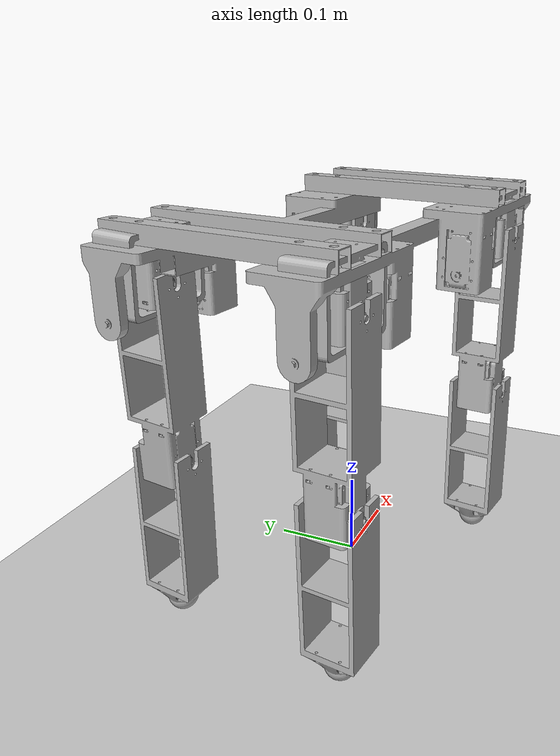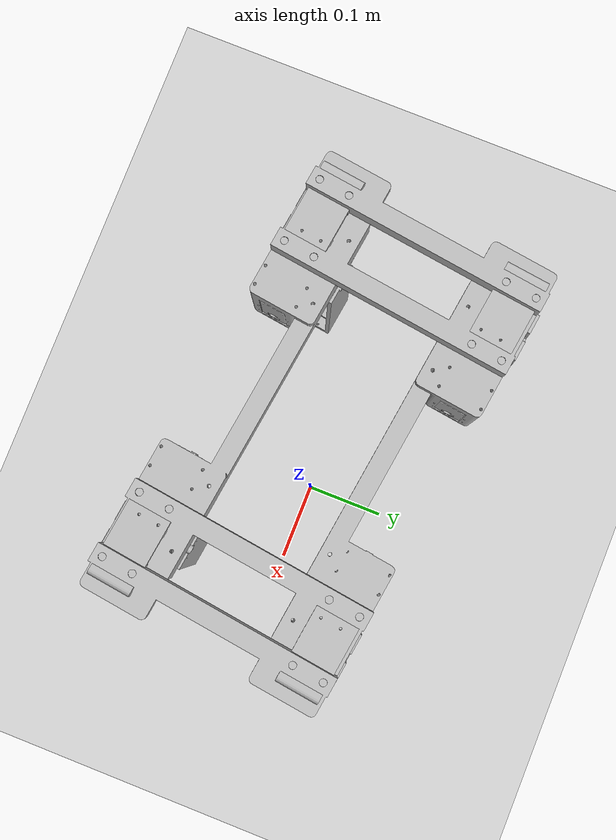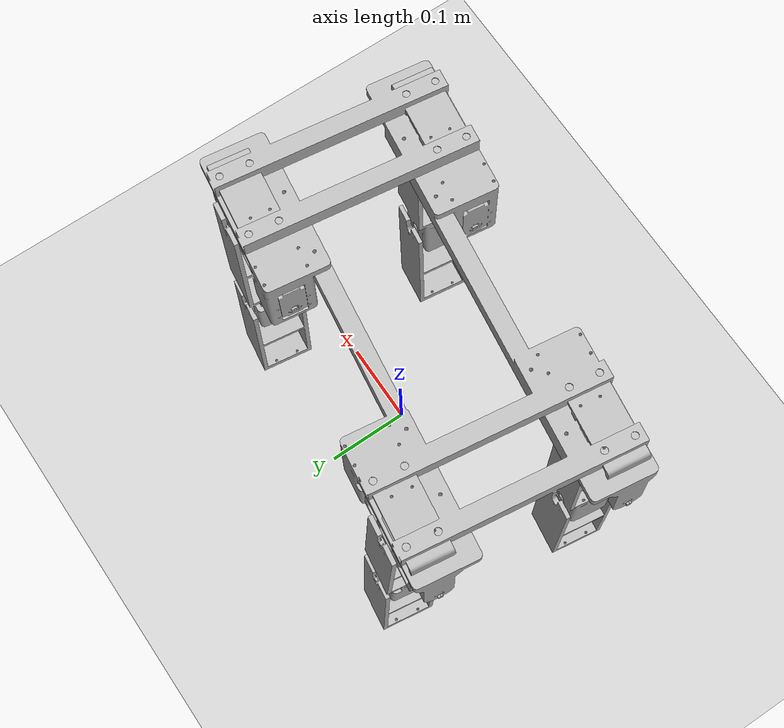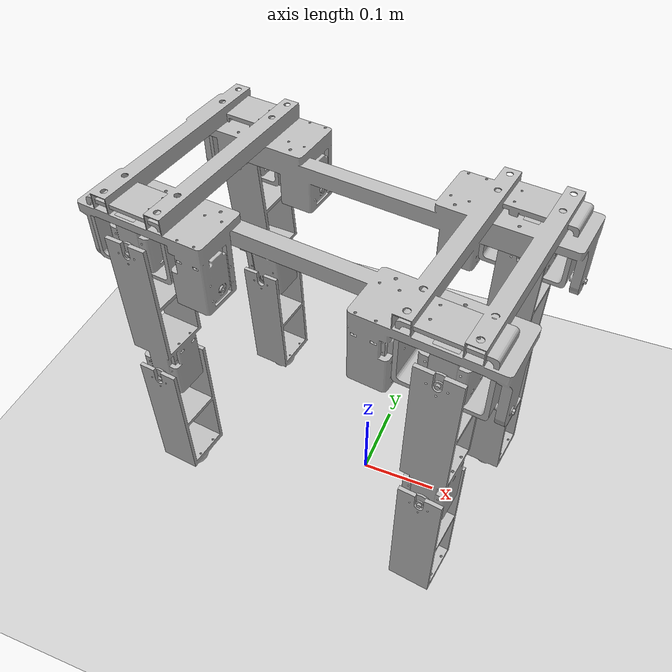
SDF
<sdf version="1.6">
 <world name="default">
  <model name="ground_plane">
   <static>1</static>
   <link name="link">
    <collision name="collision">
     <geometry><plane><normal>0 0 1</normal><size>100 100</size></plane></geometry>
     <surface><friction><ode><mu>0.3</mu><mu2>0.3</mu2></ode></friction></surface>
    </collision>
    <visual name="visual">
     <cast_shadows>0</cast_shadows>
     <geometry><plane><normal>0 0 1</normal><size>100 100</size></plane></geometry>
     <material>
      <script><uri>file://media/materials/scripts/gazebo.material</uri><name>Gazebo/Grey</name></script>
     </material>
    </visual>
   </link>
  </model>
  <light name="sun" type="directional">
   <pose>0 0 10 0 -0 0</pose>
   <diffuse>0.8 0.8 0.8 1</diffuse>
   <specular>0.1 0.1 0.1 1</specular>
   <attenuation>
    <range>1000</range>
    <constant>0.9</constant>
    <linear>0.01</linear>
    <quadratic>0.001</quadratic>
   </attenuation>
   <direction>-0.5 0.5 -1</direction>
  </light>
  <gravity>0 0 -9.8</gravity>
  <magnetic_field>6e-06 2.3e-05 -4.2e-05</magnetic_field>
  <atmosphere type="adiabatic"/>
  <physics name="default_physics" default="0" type="ode">
   <max_step_size>0.001</max_step_size>
   <real_time_factor>1</real_time_factor>
   <real_time_update_rate>1000</real_time_update_rate>
  </physics>
  <scene><ambient>0.4 0.4 0.4 1</ambient><background>0.7 0.7 0.7 1</background><shadows>1</shadows></scene>
  <spherical_coordinates>
   <surface_model>EARTH_WGS84</surface_model>
   <latitude_deg>0</latitude_deg>
   <longitude_deg>0</longitude_deg>
   <elevation>0</elevation>
   <heading_deg>0</heading_deg>
  </spherical_coordinates>
  <audio><device>default</device></audio>
  <model name="Animal">
   <link name="base_link">
    <inertial>
     <pose>-0 -3e-05 0.034153 0 -0 0</pose>
     <mass>1.7307</mass>
     <inertia>
      <ixx>0.018437</ixx>
      <ixy>5.6694e-06</ixy>
      <ixz>8.9977e-11</ixz>
      <iyy>0.051776</iyy>
      <iyz>-9.5537e-07</iyz>
      <izz>0.067028</izz>
     </inertia>
    </inertial>
    <collision name="base_link_collision">
     <geometry>
      <mesh><scale>1 1 1</scale><uri>/home/lab931/ros_ws/src/Animal/meshes/base_link.STL</uri></mesh>
     </geometry>
    </collision>
    <visual name="base_link_visual">
     <geometry>
      <mesh><scale>1 1 1</scale><uri>/home/lab931/ros_ws/src/Animal/meshes/base_link.STL</uri></mesh>
     </geometry>
    </visual>
   </link>
   <link name="Link2">
    <pose>0.1372 0.1033 0 0 -0 0</pose>
    <inertial>
     <pose>0.045397 -0.00031 -0.001073 0 -0 0</pose>
     <mass>0.252</mass>
     <inertia>
      <ixx>0.00017013</ixx>
      <ixy>-1.2055e-08</ixy>
      <ixz>-7.4449e-08</ixz>
      <iyy>0.00027025</iyy>
      <iyz>3.7432e-06</iyz>
      <izz>0.00017837</izz>
     </inertia>
    </inertial>
    <collision name="Link2_collision">
     <geometry>
      <mesh><scale>1 1 1</scale><uri>/home/lab931/ros_ws/src/Animal/meshes/Link2.STL</uri></mesh>
     </geometry>
    </collision>
    <visual name="Link2_visual">
     <geometry>
      <mesh><scale>1 1 1</scale><uri>/home/lab931/ros_ws/src/Animal/meshes/Link2.STL</uri></mesh>
     </geometry>
    </visual>
   </link>
   <joint name="Shoulder_Joint1" type="revolute">
    <child>Link2</child>
    <parent>base_link</parent>
    <axis>
     <xyz>1 0 0</xyz>
     <limit><lower>-3.14</lower><upper>3.14</upper><effort>8.4</effort><velocity>2</velocity></limit>
     <dynamics>
      <damping>0.1</damping>
      <friction>0.1</friction>
      <spring_reference>0</spring_reference>
      <spring_stiffness>0</spring_stiffness>
     </dynamics>
     <use_parent_model_frame>1</use_parent_model_frame>
    </axis>
   </joint>
   <link name="Link11">
    <pose>0.1827 0.133818 -0.014301 0 -0 0</pose>
    <inertial>
     <pose>-0.002197 -0.030177 -0.13842 0 -0 0</pose>
     <mass>0.27</mass>
     <inertia>
      <ixx>0.0011341</ixx>
      <ixy>1.4679e-07</ixy>
      <ixz>-1.5041e-05</ixz>
      <iyy>0.0010864</iyy>
      <iyz>1.024e-05</iyz>
      <izz>0.00015917</izz>
     </inertia>
    </inertial>
    <collision name="Link11_collision">
     <geometry>
      <mesh><scale>1 1 1</scale><uri>/home/lab931/ros_ws/src/Animal/meshes/Link11.STL</uri></mesh>
     </geometry>
    </collision>
    <visual name="Link11_visual">
     <geometry>
      <mesh><scale>1 1 1</scale><uri>/home/lab931/ros_ws/src/Animal/meshes/Link11.STL</uri></mesh>
     </geometry>
    </visual>
   </link>
   <joint name="foot_Joint1" type="revolute">
    <child>Link11</child>
    <parent>Link2</parent>
    <axis>
     <xyz>0 0.99997 0.00817</xyz>
     <limit><lower>-3.14</lower><upper>3.14</upper><effort>8.4</effort><velocity>2</velocity></limit>
     <dynamics>
      <damping>0.1</damping>
      <friction>0.1</friction>
      <spring_reference>0</spring_reference>
      <spring_stiffness>0</spring_stiffness>
     </dynamics>
     <use_parent_model_frame>1</use_parent_model_frame>
    </axis>
   </joint>
   <link name="Link12">
    <pose>0.179667 0.135352 -0.214271 0 -0 0</pose>
    <inertial>
     <pose>0.00265 -0.030368 -0.11422 0 -0 0</pose>
     <mass>0.114</mass>
     <inertia>
      <ixx>0.0007119</ixx>
      <ixy>-1.1015e-07</ixy>
      <ixz>1.3497e-05</ixz>
      <iyy>0.00065387</iyy>
      <iyz>4.2665e-06</iyz>
      <izz>0.00013172</izz>
     </inertia>
    </inertial>
    <collision name="Link12_collision">
     <geometry>
      <mesh><scale>1 1 1</scale><uri>/home/lab931/ros_ws/src/Animal/meshes/Link12.STL</uri></mesh>
     </geometry>
    </collision>
    <visual name="Link12_visual">
     <geometry>
      <mesh><scale>1 1 1</scale><uri>/home/lab931/ros_ws/src/Animal/meshes/Link12.STL</uri></mesh>
     </geometry>
    </visual>
   </link>
   <joint name="foot_Joint5" type="revolute">
    <child>Link12</child>
    <parent>Link11</parent>
    <axis>
     <xyz>0 0.99997 0.00817</xyz>
     <limit><lower>-3.14</lower><upper>3.14</upper><effort>8.4</effort><velocity>2</velocity></limit>
     <dynamics>
      <damping>0.1</damping>
      <friction>0.1</friction>
      <spring_reference>0</spring_reference>
      <spring_stiffness>0</spring_stiffness>
     </dynamics>
     <use_parent_model_frame>1</use_parent_model_frame>
    </axis>
   </joint>
   <link name="Link3">
    <pose>-0.1372 0.1039 0 0 -0 0</pose>
    <inertial>
     <pose>-0.045394 3.7e-05 -0.00107 0 -0 0</pose>
     <mass>0.252</mass>
     <inertia>
      <ixx>0.00017021</ixx>
      <ixy>2.192e-08</ixy>
      <ixz>7.6888e-08</ixz>
      <iyy>0.00027006</iyy>
      <iyz>5.5063e-06</iyz>
      <izz>0.00017864</izz>
     </inertia>
    </inertial>
    <collision name="Link3_collision">
     <geometry>
      <mesh><scale>1 1 1</scale><uri>/home/lab931/ros_ws/src/Animal/meshes/Link3.STL</uri></mesh>
     </geometry>
    </collision>
    <visual name="Link3_visual">
     <geometry>
      <mesh><scale>1 1 1</scale><uri>/home/lab931/ros_ws/src/Animal/meshes/Link3.STL</uri></mesh>
     </geometry>
    </visual>
   </link>
   <joint name="Shoulder_Joint2" type="revolute">
    <child>Link3</child>
    <parent>base_link</parent>
    <axis>
     <xyz>-1 0 0</xyz>
     <limit><lower>-3.14</lower><upper>3.14</upper><effort>8.4</effort><velocity>2</velocity></limit>
     <dynamics>
      <damping>0.1</damping>
      <friction>0.1</friction>
      <spring_reference>0</spring_reference>
      <spring_stiffness>0</spring_stiffness>
     </dynamics>
     <use_parent_model_frame>1</use_parent_model_frame>
    </axis>
   </joint>
   <link name="Link9">
    <pose>-0.1827 0.13551 -0.013635 0 -0 0</pose>
    <inertial>
     <pose>0.007542 -0.027276 -0.13884 0 -0 0</pose>
     <mass>0.27</mass>
     <inertia>
      <ixx>0.0011314</ixx>
      <ixy>-1.7252e-06</ixy>
      <ixz>5.3598e-05</ixz>
      <iyy>0.0010856</iyy>
      <iyz>2.9571e-05</iyz>
      <izz>0.00016273</izz>
     </inertia>
    </inertial>
    <collision name="Link9_collision">
     <geometry>
      <mesh><scale>1 1 1</scale><uri>/home/lab931/ros_ws/src/Animal/meshes/Link9.STL</uri></mesh>
     </geometry>
    </collision>
    <visual name="Link9_visual">
     <geometry>
      <mesh><scale>1 1 1</scale><uri>/home/lab931/ros_ws/src/Animal/meshes/Link9.STL</uri></mesh>
     </geometry>
    </visual>
   </link>
   <joint name="foot_Joint2" type="revolute">
    <child>Link9</child>
    <parent>Link3</parent>
    <axis>
     <xyz>0 0.99958 0.029119</xyz>
     <limit><lower>-3.14</lower><upper>3.14</upper><effort>8.4</effort><velocity>2</velocity></limit>
     <dynamics>
      <damping>0.1</damping>
      <friction>0.1</friction>
      <spring_reference>0</spring_reference>
      <spring_stiffness>0</spring_stiffness>
     </dynamics>
     <use_parent_model_frame>1</use_parent_model_frame>
    </axis>
   </joint>
   <link name="Link10">
    <pose>-0.171638 0.141225 -0.213245 0 -0 0</pose>
    <inertial>
     <pose>0.00218 -0.027968 -0.11484 0 -0 0</pose>
     <mass>0.114</mass>
     <inertia>
      <ixx>0.000712</ixx>
      <ixy>-3.2321e-07</ixy>
      <ixz>1.1099e-05</ixz>
      <iyy>0.00065346</iyy>
      <iyz>1.5203e-05</iyz>
      <izz>0.00013202</izz>
     </inertia>
    </inertial>
    <collision name="Link10_collision">
     <geometry>
      <mesh><scale>1 1 1</scale><uri>/home/lab931/ros_ws/src/Animal/meshes/Link10.STL</uri></mesh>
     </geometry>
    </collision>
    <visual name="Link10_visual">
     <geometry>
      <mesh><scale>1 1 1</scale><uri>/home/lab931/ros_ws/src/Animal/meshes/Link10.STL</uri></mesh>
     </geometry>
    </visual>
   </link>
   <joint name="foot_Joint6" type="revolute">
    <child>Link10</child>
    <parent>Link9</parent>
    <axis>
     <xyz>0 0.99958 0.029119</xyz>
     <limit><lower>-3.14</lower><upper>3.14</upper><effort>8.4</effort><velocity>2</velocity></limit>
     <dynamics>
      <damping>0.1</damping>
      <friction>0.1</friction>
      <spring_reference>0</spring_reference>
      <spring_stiffness>0</spring_stiffness>
     </dynamics>
     <use_parent_model_frame>1</use_parent_model_frame>
    </axis>
   </joint>
   <link name="Link1">
    <pose>0.1372 -0.1039 0 0 -0 0</pose>
    <inertial>
     <pose>0.045394 -1.4e-05 -0.001071 0 -0 0</pose>
     <mass>0.252</mass>
     <inertia>
      <ixx>0.00017021</ixx>
      <ixy>2.3597e-08</ixy>
      <ixz>-7.639e-08</ixz>
      <iyy>0.00027026</iyy>
      <iyz>-3.5011e-06</iyz>
      <izz>0.00017845</izz>
     </inertia>
    </inertial>
    <collision name="Link1_collision">
     <geometry>
      <mesh><scale>1 1 1</scale><uri>/home/lab931/ros_ws/src/Animal/meshes/Link1.STL</uri></mesh>
     </geometry>
    </collision>
    <visual name="Link1_visual">
     <geometry>
      <mesh><scale>1 1 1</scale><uri>/home/lab931/ros_ws/src/Animal/meshes/Link1.STL</uri></mesh>
     </geometry>
    </visual>
   </link>
   <joint name="Shoulder_Joint3" type="revolute">
    <child>Link1</child>
    <parent>base_link</parent>
    <axis>
     <xyz>1 0 0</xyz>
     <limit><lower>-3.14</lower><upper>3.14</upper><effort>8.4</effort><velocity>2</velocity></limit>
     <dynamics>
      <damping>0.1</damping>
      <friction>0.1</friction>
      <spring_reference>0</spring_reference>
      <spring_stiffness>0</spring_stiffness>
     </dynamics>
     <use_parent_model_frame>1</use_parent_model_frame>
    </axis>
   </joint>
   <link name="Link7">
    <pose>0.1827 -0.135205 -0.014324 0 -0 0</pose>
    <inertial>
     <pose>-0.001864 0.030584 -0.1384 0 -0 0</pose>
     <mass>0.27</mass>
     <inertia>
      <ixx>0.0011341</ixx>
      <ixy>-7.332e-08</ixy>
      <ixz>-1.2708e-05</ixz>
      <iyy>0.0010865</iyy>
      <iyz>-6.1897e-06</iyz>
      <izz>0.00015896</izz>
     </inertia>
    </inertial>
    <collision name="Link7_collision">
     <geometry>
      <mesh><scale>1 1 1</scale><uri>/home/lab931/ros_ws/src/Animal/meshes/Link7.STL</uri></mesh>
     </geometry>
    </collision>
    <visual name="Link7_visual">
     <geometry>
      <mesh><scale>1 1 1</scale><uri>/home/lab931/ros_ws/src/Animal/meshes/Link7.STL</uri></mesh>
     </geometry>
    </visual>
   </link>
   <joint name="foot_Joint3" type="revolute">
    <child>Link7</child>
    <parent>Link1</parent>
    <axis>
     <xyz>0 -0.99997 0.00724</xyz>
     <limit><lower>-3.14</lower><upper>3.14</upper><effort>8.4</effort><velocity>2</velocity></limit>
     <dynamics>
      <damping>0.1</damping>
      <friction>0.1</friction>
      <spring_reference>0</spring_reference>
      <spring_stiffness>0</spring_stiffness>
     </dynamics>
     <use_parent_model_frame>1</use_parent_model_frame>
    </axis>
   </joint>
   <link name="Link8">
    <pose>0.180152 -0.135753 -0.214314 0 -0 0</pose>
    <inertial>
     <pose>-0.000727 0.030474 -0.11422 0 -0 0</pose>
     <mass>0.114</mass>
     <inertia>
      <ixx>0.00071219</ixx>
      <ixy>-2.6697e-08</ixy>
      <ixz>-3.7052e-06</ixz>
      <iyy>0.00065387</iyy>
      <iyz>-3.7828e-06</iyz>
      <izz>0.00013142</izz>
     </inertia>
    </inertial>
    <collision name="Link8_collision">
     <geometry>
      <mesh><scale>1 1 1</scale><uri>/home/lab931/ros_ws/src/Animal/meshes/Link8.STL</uri></mesh>
     </geometry>
    </collision>
    <visual name="Link8_visual">
     <geometry>
      <mesh><scale>1 1 1</scale><uri>/home/lab931/ros_ws/src/Animal/meshes/Link8.STL</uri></mesh>
     </geometry>
    </visual>
   </link>
   <joint name="foot_Joint7" type="revolute">
    <child>Link8</child>
    <parent>Link7</parent>
    <axis>
     <xyz>0 -0.99997 0.00724</xyz>
     <limit><lower>-3.14</lower><upper>3.14</upper><effort>8.4</effort><velocity>2</velocity></limit>
     <dynamics>
      <damping>0.1</damping>
      <friction>0.1</friction>
      <spring_reference>0</spring_reference>
      <spring_stiffness>0</spring_stiffness>
     </dynamics>
     <use_parent_model_frame>1</use_parent_model_frame>
    </axis>
   </joint>
   <link name="Link4">
    <pose>-0.1372 -0.1039 0 0 -0 0</pose>
    <inertial>
     <pose>-0.045397 -6e-06 -0.001071 0 -0 0</pose>
     <mass>0.252</mass>
     <inertia>
      <ixx>0.00017021</ixx>
      <ixy>-2.0074e-08</ixy>
      <ixz>7.4345e-08</ixz>
      <iyy>0.00027031</iyy>
      <iyz>-2.8231e-06</iyz>
      <izz>0.0001784</izz>
     </inertia>
    </inertial>
    <collision name="Link4_collision">
     <geometry>
      <mesh><scale>1 1 1</scale><uri>/home/lab931/ros_ws/src/Animal/meshes/Link4.STL</uri></mesh>
     </geometry>
    </collision>
    <visual name="Link4_visual">
     <geometry>
      <mesh><scale>1 1 1</scale><uri>/home/lab931/ros_ws/src/Animal/meshes/Link4.STL</uri></mesh>
     </geometry>
    </visual>
   </link>
   <joint name="Shoulder_Joint4" type="revolute">
    <child>Link4</child>
    <parent>base_link</parent>
    <axis>
     <xyz>-1 0 0</xyz>
     <limit><lower>-3.14</lower><upper>3.14</upper><effort>8.4</effort><velocity>2</velocity></limit>
     <dynamics>
      <damping>0.1</damping>
      <friction>0.1</friction>
      <spring_reference>0</spring_reference>
      <spring_stiffness>0</spring_stiffness>
     </dynamics>
     <use_parent_model_frame>1</use_parent_model_frame>
    </axis>
   </joint>
   <link name="Link5">
    <pose>-0.1827 -0.135098 -0.014554 0 -0 0</pose>
    <inertial>
     <pose>0.002281 0.031327 -0.13817 0 -0 0</pose>
     <mass>0.27</mass>
     <inertia>
      <ixx>0.0011341</ixx>
      <ixy>2.3289e-08</ixy>
      <ixz>1.5631e-05</ixz>
      <iyy>0.0010865</iyy>
      <iyz>-2.532e-06</iyz>
      <izz>0.00015908</izz>
     </inertia>
    </inertial>
    <collision name="Link5_collision">
     <geometry>
      <mesh><scale>1 1 1</scale><uri>/home/lab931/ros_ws/src/Animal/meshes/Link5.STL</uri></mesh>
     </geometry>
    </collision>
    <visual name="Link5_visual">
     <geometry>
      <mesh><scale>1 1 1</scale><uri>/home/lab931/ros_ws/src/Animal/meshes/Link5.STL</uri></mesh>
     </geometry>
    </visual>
   </link>
   <joint name="foot_Joint4" type="revolute">
    <child>Link5</child>
    <parent>Link4</parent>
    <axis>
     <xyz>0 -1 -0.000141</xyz>
     <limit><lower>-3.14</lower><upper>3.14</upper><effort>8.4</effort><velocity>2</velocity></limit>
     <dynamics>
      <damping>0.1</damping>
      <friction>0.1</friction>
      <spring_reference>0</spring_reference>
      <spring_stiffness>0</spring_stiffness>
     </dynamics>
     <use_parent_model_frame>1</use_parent_model_frame>
    </axis>
   </joint>
   <link name="Link6">
    <pose>-0.179546 -0.13497 -0.214534 0 -0 0</pose>
    <inertial>
     <pose>0.003073 0.031316 -0.11396 0 -0 0</pose>
     <mass>0.114</mass>
     <inertia>
      <ixx>0.00071179</ixx>
      <ixy>-2.0824e-09</ixy>
      <ixz>1.5653e-05</ixz>
      <iyy>0.0006539</iyy>
      <iyz>7.3802e-08</iyz>
      <izz>0.00013179</izz>
     </inertia>
    </inertial>
    <collision name="Link6_collision">
     <geometry>
      <mesh><scale>1 1 1</scale><uri>/home/lab931/ros_ws/src/Animal/meshes/Link6.STL</uri></mesh>
     </geometry>
    </collision>
    <visual name="Link6_visual">
     <geometry>
      <mesh><scale>1 1 1</scale><uri>/home/lab931/ros_ws/src/Animal/meshes/Link6.STL</uri></mesh>
     </geometry>
    </visual>
   </link>
   <joint name="foot_Joint8" type="revolute">
    <child>Link6</child>
    <parent>Link5</parent>
    <axis>
     <xyz>0 -1 -0.000141</xyz>
     <limit><lower>-3.14</lower><upper>3.14</upper><effort>8.4</effort><velocity>2</velocity></limit>
     <dynamics>
      <damping>0.1</damping>
      <friction>0.1</friction>
      <spring_reference>0</spring_reference>
      <spring_stiffness>0</spring_stiffness>
     </dynamics>
     <use_parent_model_frame>1</use_parent_model_frame>
    </axis>
   </joint>
   <static>0</static>
   <plugin name="gazebo_ros_control" filename="libgazebo_ros_control.so">
    <robotNamespace>/Animal</robotNamespace>
    <robotSimType>gazebo_ros_control/DefaultRobotHWSim</robotSimType>
    <legacyModeNS>1</legacyModeNS>
   </plugin>
   <pose>-0.042123 -0.001125 0.414433 -0.001797 -0.001099 -0.135644</pose>
  </model>
 </world>
</sdf>
